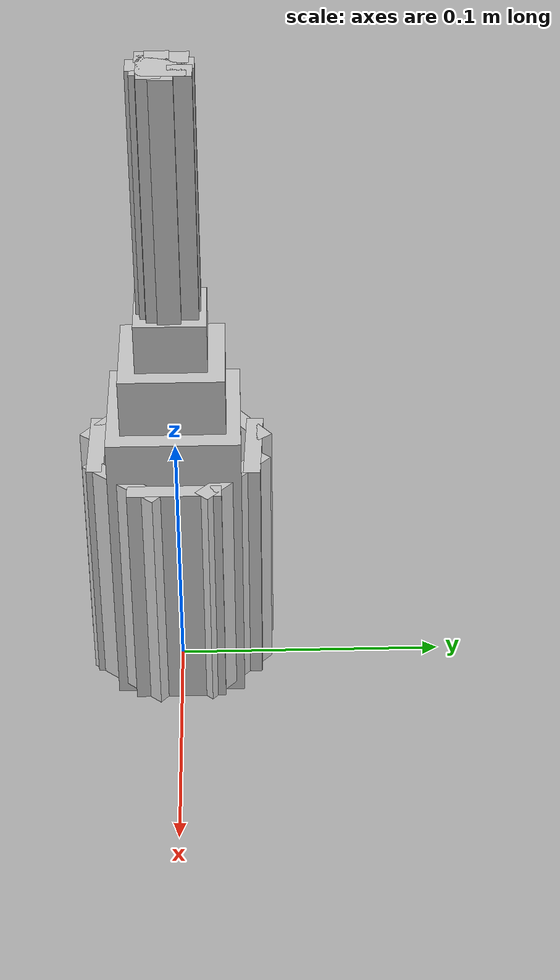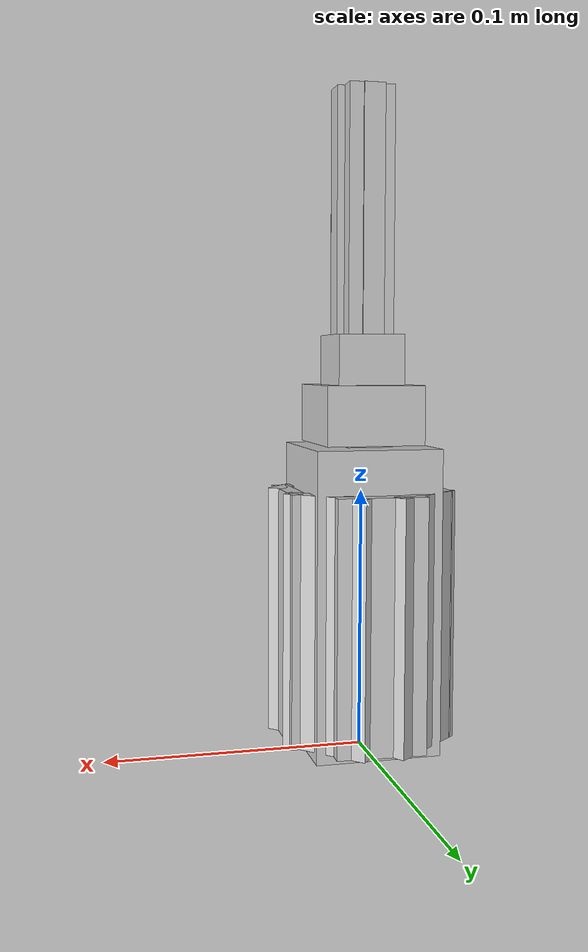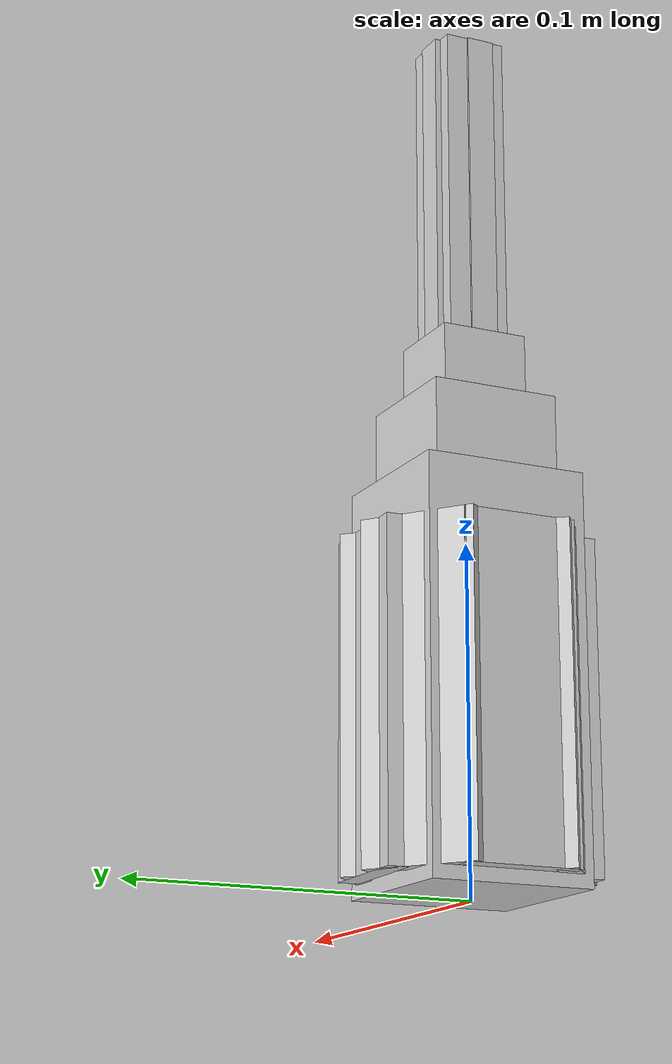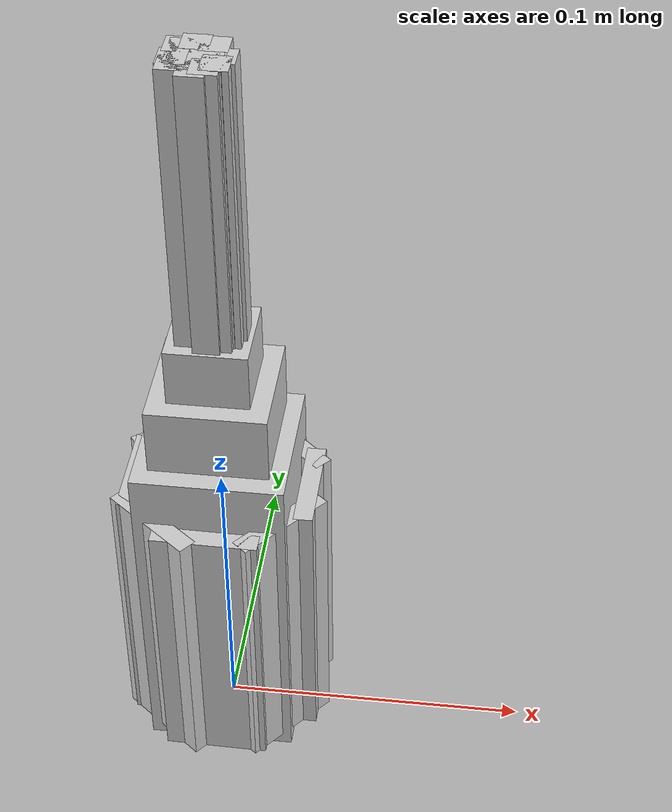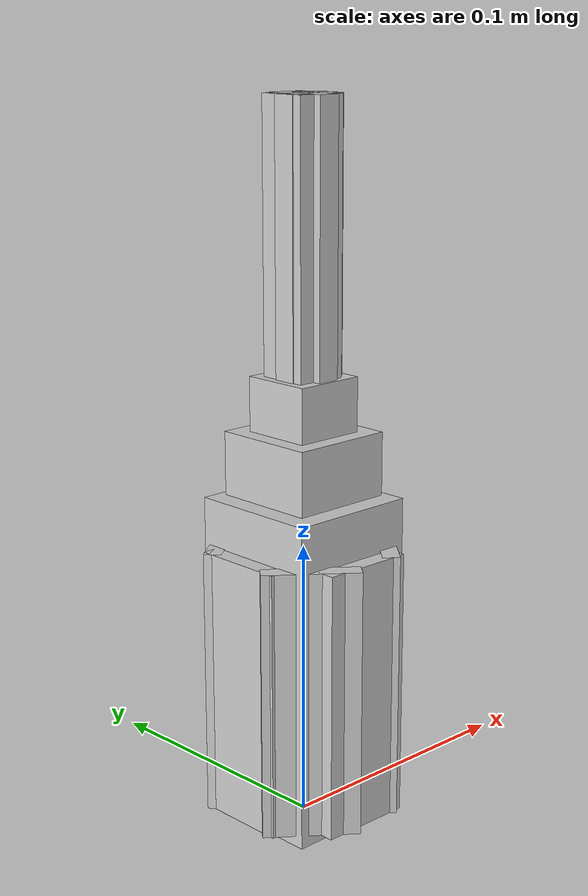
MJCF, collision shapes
<mujoco model="wine_bottle_red_main">
  <asset>
    <texture file="label_wine.png" name="tex-wine_bottle_red_logo" type="2d"/>
    <material name="wine_bottle_red_logo" reflectance="0.5" texrepeat="1 1" texture="tex-wine_bottle_red_logo" texuniform="false"/>
    <mesh file="visual/wine_bottle_red_logo_vis.msh" name="wine_bottle_red_logo_vis" scale="0.808 0.808 0.808"/>

    <texture file="cork_texture.png" name="tex-wine_bottle_red_cork" type="2d"/>
    <material name="wine_bottle_red_cork" reflectance="0.5" texrepeat="1 1" texture="tex-wine_bottle_red_cork" texuniform="false"/>
    <mesh file="visual/wine_bottle_red_cork_vis.msh" name="wine_bottle_red_cork_vis" scale="0.8 0.8 0.8"/>

    <material name="wine_bottle_red_main" reflectance="0.5" texrepeat="1 1" rgba="0.004 0.036 0.002 1" specular="0.5" />
    <mesh file="visual/wine_bottle_red_main_vis.msh" name="wine_bottle_red_main_vis" scale="0.8 0.8 0.8"/>
  </asset>

  <worldbody>
    <body>
      <body name="object">

        <!-- 视觉 mesh -->
        <geom type="mesh" mesh="wine_bottle_red_main_vis" material="wine_bottle_red_main"
              conaffinity="0" contype="0" group="1"
              solimp="0.998 0.998 0.001" solref="0.001 1"
              density="100" friction="0.95 0.3 0.1"/>
        <geom type="mesh" mesh="wine_bottle_red_cork_vis" material="wine_bottle_red_cork"
              conaffinity="0" contype="0" group="1"
              solimp="0.998 0.998 0.001" solref="0.001 1"
              density="100" friction="0.95 0.3 0.1"/>
        <geom type="mesh" mesh="wine_bottle_red_logo_vis" material="wine_bottle_red_logo"
              conaffinity="0" contype="0" group="1"
              solimp="0.998 0.998 0.001" solref="0.001 1"
              density="100" friction="0.95 0.3 0.1"/>

        <!-- 碰撞体（全部 ×1.6） -->
        <geom type="box" pos="0.00000 0.00000 0.05962" size="0.02405 0.02405 0.05784" quat="0.00000 0.00000 0.00000 1.00000"
              group="0" rgba="0.8 0.8 0.8 0.3"/>
        <geom type="box" pos="0.00000 0.00000 0.16458" size="0.00832 0.00832 0.08829" quat="0.00000 0.00000 0.00000 1.00000"
              group="0" rgba="0.8 0.8 0.8 0.3"/>
        <geom type="box" pos="0.00000 0.00000 0.12974" size="0.01120 0.01888 0.01888" quat="0.50000 0.50000 -0.50000 0.50000"
              group="0" rgba="0.8 0.8 0.8 0.3"/>
        <geom type="box" pos="0.00720 0.00000 0.16458" size="0.00413 0.00413 0.08829" quat="0.00000 0.00000 0.00000 1.00000"
              group="0" rgba="0.8 0.8 0.8 0.3"/>
        <geom type="box" pos="0.00610 -0.00394 0.16458" size="0.00413 0.00413 0.08829" quat="0.00000 0.00000 0.00000 1.00000"
              group="0" rgba="0.8 0.8 0.8 0.3"/>
        <geom type="box" pos="0.00357 -0.00624 0.16458" size="0.00413 0.00413 0.08829" quat="0.00000 0.00000 0.00000 1.00000"
              group="0" rgba="0.8 0.8 0.8 0.3"/>
        <geom type="box" pos="0.00019 -0.00765 0.16458" size="0.00413 0.00413 0.08829" quat="0.00000 0.00000 0.00000 1.00000"
              group="0" rgba="0.8 0.8 0.8 0.3"/>
        <geom type="box" pos="-0.00571 -0.00482 0.16458" size="0.00413 0.00413 0.08829" quat="0.00000 0.70711 0.70711 0.00000"
              group="0" rgba="0.8 0.8 0.8 0.3"/>
        <geom type="box" pos="-0.00614 -0.00154 0.16458" size="0.00413 0.00413 0.08829" quat="0.00000 0.00000 1.00000 0.00000"
              group="0" rgba="0.8 0.8 0.8 0.3"/>
        <geom type="box" pos="-0.00549 0.00502 0.16458" size="0.00413 0.00413 0.08829" quat="0.00000 0.00000 0.00000 1.00000"
              group="0" rgba="0.8 0.8 0.8 0.3"/>
        <geom type="box" pos="-0.00112 0.00678 0.16458" size="0.00413 0.00413 0.08829" quat="0.00000 0.00000 1.00000 0.00000"
              group="0" rgba="0.8 0.8 0.8 0.3"/>
        <geom type="box" pos="0.00435 0.00613 0.16458" size="0.00413 0.00413 0.08829" quat="0.00000 0.00000 0.00000 1.00000"
              group="0" rgba="0.8 0.8 0.8 0.3"/>
        <geom type="box" pos="0.00000 0.00000 0.14888" size="0.01120 0.01285 0.01285" quat="0.50000 0.50000 -0.50000 0.50000"
              group="0" rgba="0.8 0.8 0.8 0.3"/>

        <geom type="box" pos="-0.02768 0.00000 0.05330" size="0.00309 0.01688 0.04766" quat="0.00000 0.00000 1.00000 0.00000"
              group="0" rgba="0.8 0.8 0.8 0.3"/>
        <geom type="box" pos="0.02862 0.00000 0.05330" size="0.00309 0.01688 0.04766" quat="0.00000 0.00000 1.00000 0.00000"
              group="0" rgba="0.8 0.8 0.8 0.3"/>
        <geom type="box" pos="0.00138 0.02859 0.05330" size="0.00309 0.01688 0.04766" quat="-0.00000 -0.72389 -0.68992 -0.00000"
              group="0" rgba="0.8 0.8 0.8 0.3"/>
        <geom type="box" pos="-0.00038 -0.02862 0.05330" size="0.00309 0.01688 0.04766" quat="-0.00000 -0.71183 -0.70235 -0.00000"
              group="0" rgba="0.8 0.8 0.8 0.3"/>
        <geom type="box" pos="-0.01798 -0.02227 0.05330" size="0.00309 0.01688 0.04766" quat="0.00000 -0.43119 0.90226 0.00000"
              group="0" rgba="0.8 0.8 0.8 0.3"/>
        <geom type="box" pos="-0.01714 0.02293 0.05330" size="0.00309 0.01688 0.04766" quat="0.00000 -0.89402 0.44802 0.00000"
              group="0" rgba="0.8 0.8 0.8 0.3"/>
        <geom type="box" pos="0.01936 0.02107 0.05330" size="0.00309 0.01688 0.04766" quat="-0.00000 -0.91561 -0.40207 -0.00000"
              group="0" rgba="0.8 0.8 0.8 0.3"/>
        <geom type="box" pos="0.02181 -0.01853 0.05330" size="0.00309 0.01688 0.04766" quat="0.00000 0.34482 0.93867 0.00000"
              group="0" rgba="0.8 0.8 0.8 0.3"/>

      </body>

      <!-- sites -->
      <site rgba="0 0 0 0" size="0.005" pos="0 0 -0.06" name="bottom_site" />
      <site rgba="0 0 0 0" size="0.005" pos="0 0 0.04" name="top_site" />
      <site rgba="0 0 0 0" size="0.005" pos="0.025 0.025 0" name="horizontal_radius_site" />

    </body>
  </worldbody>
</mujoco>
